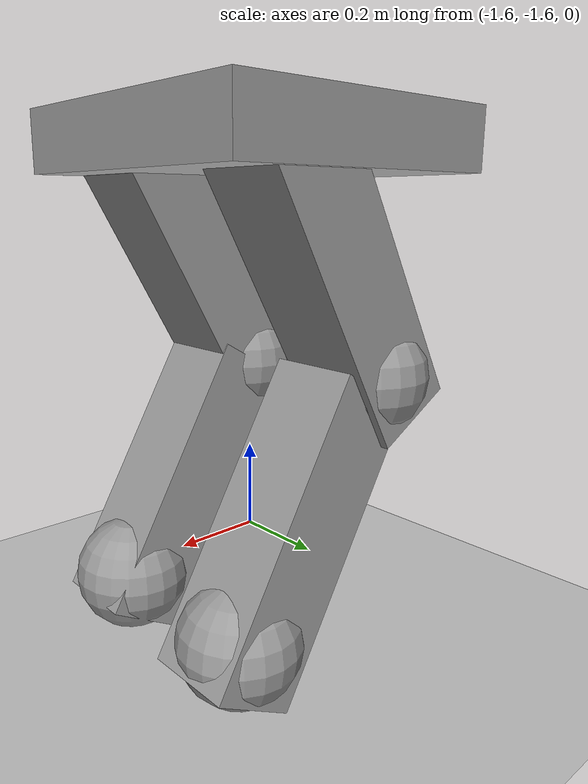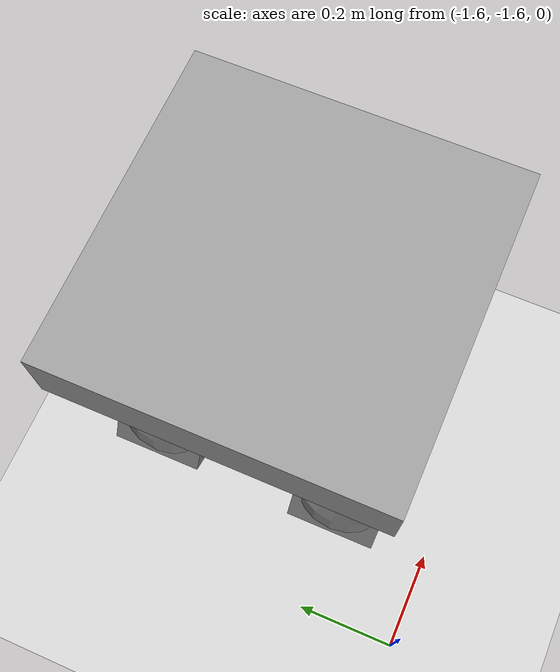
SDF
<sdf version="1.6">
 <world name="default">
  <model name="ground_plane">
   <static>1</static>
   <link name="link">
    <collision name="collision">
     <geometry><plane><normal>0 0 1</normal><size>100 100</size></plane></geometry>
     <surface>
      <contact><collide_bitmask>65535</collide_bitmask></contact>
      <friction><ode><mu>100</mu><mu2>50</mu2></ode></friction>
     </surface>
    </collision>
    <visual name="visual">
     <cast_shadows>0</cast_shadows>
     <geometry><plane><normal>0 0 1</normal><size>100 100</size></plane></geometry>
     <material>
      <script><uri>file://media/materials/scripts/gazebo.material</uri><name>Gazebo/Grey</name></script>
     </material>
    </visual>
   </link>
  </model>
  <model name="2LeggedBot_clone">
   <link name="link_0">
    <inertial>
     <mass>1</mass>
     <inertia><ixx>0.1</ixx><ixy>0</ixy><ixz>0</ixz><iyy>0.1</iyy><iyz>0</iyz><izz>0.1</izz></inertia>
    </inertial>
    <pose>0.169699 -0.170527 -0.315363 0 -0 0</pose>
    <visual name="visual">
     <geometry><sphere><radius>0.1</radius></sphere></geometry>
     <material>
      <lighting>1</lighting>
      <script><uri>file://media/materials/scripts/gazebo.material</uri><name>Gazebo/Grey</name></script>
      <shader type="pixel"><normal_map>__default__</normal_map></shader>
      <ambient>0.3 0.3 0.3 1</ambient>
      <diffuse>0.7 0.7 0.7 1</diffuse>
      <specular>0.01 0.01 0.01 1</specular>
      <emissive>0 0 0 1</emissive>
     </material>
    </visual>
    <visual name="ModelPreview_2::link_0::visual_1">
     <geometry><sphere><radius>0.1</radius></sphere></geometry>
     <material>
      <lighting>1</lighting>
      <script><uri>file://media/materials/scripts/gazebo.material</uri><name>Gazebo/Grey</name></script>
      <shader type="pixel"><normal_map>__default__</normal_map></shader>
      <ambient>0.3 0.3 0.3 1</ambient>
      <diffuse>0.7 0.7 0.7 1</diffuse>
      <specular>0.01 0.01 0.01 1</specular>
      <emissive>0 0 0 1</emissive>
     </material>
    </visual>
    <collision name="collision">
     <geometry><sphere><radius>0.1</radius></sphere></geometry>
     <surface>
      <friction>
       <ode><mu>1</mu><mu2>1</mu2><fdir1>0 0 0</fdir1><slip1>0</slip1><slip2>0</slip2></ode>
       <torsional>
        <coefficient>1</coefficient>
        <patch_radius>0</patch_radius>
        <surface_radius>0</surface_radius>
        <use_patch_radius>1</use_patch_radius>
        <ode><slip>0</slip></ode>
       </torsional>
      </friction>
      <bounce><restitution_coefficient>0</restitution_coefficient><threshold>1e+06</threshold></bounce>
      <contact>
       <collide_without_contact>0</collide_without_contact>
       <collide_without_contact_bitmask>1</collide_without_contact_bitmask>
       <collide_bitmask>1</collide_bitmask>
       <ode>
        <soft_cfm>0</soft_cfm>
        <soft_erp>0.2</soft_erp>
        <kp>1e+13</kp>
        <kd>1</kd>
        <max_vel>0.01</max_vel>
        <min_depth>0</min_depth>
       </ode>
       <bullet>
        <split_impulse>1</split_impulse>
        <split_impulse_penetration_threshold>-0.01</split_impulse_penetration_threshold>
        <soft_cfm>0</soft_cfm>
        <soft_erp>0.2</soft_erp>
        <kp>1e+13</kp>
        <kd>1</kd>
       </bullet>
      </contact>
     </surface>
    </collision>
   </link>
   <link name="link_0_clone">
    <inertial>
     <mass>1</mass>
     <inertia><ixx>0.1</ixx><ixy>0</ixy><ixz>0</ixz><iyy>0.1</iyy><iyz>0</iyz><izz>0.1</izz></inertia>
    </inertial>
    <pose>0.169699 0.129473 -0.315363 0 -0 0</pose>
    <visual name="visual">
     <geometry><sphere><radius>0.1</radius></sphere></geometry>
     <material>
      <lighting>1</lighting>
      <script><uri>file://media/materials/scripts/gazebo.material</uri><name>Gazebo/Grey</name></script>
      <shader type="pixel"><normal_map>__default__</normal_map></shader>
      <ambient>0.3 0.3 0.3 1</ambient>
      <diffuse>0.7 0.7 0.7 1</diffuse>
      <specular>0.01 0.01 0.01 1</specular>
      <emissive>0 0 0 1</emissive>
     </material>
    </visual>
    <visual name="visual_1">
     <geometry><sphere><radius>0.1</radius></sphere></geometry>
     <material>
      <lighting>1</lighting>
      <script><uri>file://media/materials/scripts/gazebo.material</uri><name>Gazebo/Grey</name></script>
      <shader type="pixel"><normal_map>__default__</normal_map></shader>
      <ambient>0.3 0.3 0.3 1</ambient>
      <diffuse>0.7 0.7 0.7 1</diffuse>
      <specular>0.01 0.01 0.01 1</specular>
      <emissive>0 0 0 1</emissive>
     </material>
    </visual>
    <collision name="collision">
     <geometry><sphere><radius>0.1</radius></sphere></geometry>
     <surface>
      <friction>
       <ode><mu>1</mu><mu2>1</mu2><fdir1>0 0 0</fdir1><slip1>0</slip1><slip2>0</slip2></ode>
       <torsional>
        <coefficient>1</coefficient>
        <patch_radius>0</patch_radius>
        <surface_radius>0</surface_radius>
        <use_patch_radius>1</use_patch_radius>
        <ode><slip>0</slip></ode>
       </torsional>
      </friction>
      <bounce><restitution_coefficient>0</restitution_coefficient><threshold>1e+06</threshold></bounce>
      <contact>
       <collide_without_contact>0</collide_without_contact>
       <collide_without_contact_bitmask>1</collide_without_contact_bitmask>
       <collide_bitmask>1</collide_bitmask>
       <ode>
        <soft_cfm>0</soft_cfm>
        <soft_erp>0.2</soft_erp>
        <kp>1e+13</kp>
        <kd>1</kd>
        <max_vel>0.01</max_vel>
        <min_depth>0</min_depth>
       </ode>
       <bullet>
        <split_impulse>1</split_impulse>
        <split_impulse_penetration_threshold>-0.01</split_impulse_penetration_threshold>
        <soft_cfm>0</soft_cfm>
        <soft_erp>0.2</soft_erp>
        <kp>1e+13</kp>
        <kd>1</kd>
       </bullet>
      </contact>
     </surface>
    </collision>
   </link>
   <link name="link_0_clone_0">
    <inertial>
     <mass>1</mass>
     <inertia><ixx>0.1</ixx><ixy>0</ixy><ixz>0</ixz><iyy>0.1</iyy><iyz>0</iyz><izz>0.1</izz></inertia>
    </inertial>
    <pose>-0.088021 0.142639 0.064349 0 -0 0</pose>
    <visual name="visual_1">
     <geometry><sphere><radius>0.1</radius></sphere></geometry>
     <material>
      <lighting>1</lighting>
      <script><uri>file://media/materials/scripts/gazebo.material</uri><name>Gazebo/Grey</name></script>
      <shader type="pixel"><normal_map>__default__</normal_map></shader>
      <ambient>0.3 0.3 0.3 1</ambient>
      <diffuse>0.7 0.7 0.7 1</diffuse>
      <specular>0.01 0.01 0.01 1</specular>
      <emissive>0 0 0 1</emissive>
     </material>
    </visual>
    <visual name="visual">
     <geometry><sphere><radius>0.1</radius></sphere></geometry>
     <material>
      <lighting>1</lighting>
      <script><uri>file://media/materials/scripts/gazebo.material</uri><name>Gazebo/Grey</name></script>
      <shader type="pixel"><normal_map>__default__</normal_map></shader>
      <ambient>0.3 0.3 0.3 1</ambient>
      <diffuse>0.7 0.7 0.7 1</diffuse>
      <specular>0.01 0.01 0.01 1</specular>
      <emissive>0 0 0 1</emissive>
     </material>
    </visual>
    <collision name="collision">
     <geometry><sphere><radius>0.1</radius></sphere></geometry>
     <surface>
      <friction>
       <ode><mu>1</mu><mu2>1</mu2><fdir1>0 0 0</fdir1><slip1>0</slip1><slip2>0</slip2></ode>
       <torsional>
        <coefficient>1</coefficient>
        <patch_radius>0</patch_radius>
        <surface_radius>0</surface_radius>
        <use_patch_radius>1</use_patch_radius>
        <ode><slip>0</slip></ode>
       </torsional>
      </friction>
      <bounce><restitution_coefficient>0</restitution_coefficient><threshold>1e+06</threshold></bounce>
      <contact>
       <collide_without_contact>0</collide_without_contact>
       <collide_without_contact_bitmask>1</collide_without_contact_bitmask>
       <collide_bitmask>1</collide_bitmask>
       <ode>
        <soft_cfm>0</soft_cfm>
        <soft_erp>0.2</soft_erp>
        <kp>1e+13</kp>
        <kd>1</kd>
        <max_vel>0.01</max_vel>
        <min_depth>0</min_depth>
       </ode>
       <bullet>
        <split_impulse>1</split_impulse>
        <split_impulse_penetration_threshold>-0.01</split_impulse_penetration_threshold>
        <soft_cfm>0</soft_cfm>
        <soft_erp>0.2</soft_erp>
        <kp>1e+13</kp>
        <kd>1</kd>
       </bullet>
      </contact>
     </surface>
    </collision>
   </link>
   <link name="link_0_clone_1">
    <inertial>
     <mass>1</mass>
     <inertia><ixx>0.1</ixx><ixy>0</ixy><ixz>0</ixz><iyy>0.1</iyy><iyz>0</iyz><izz>0.1</izz></inertia>
    </inertial>
    <pose>-0.092915 -0.172952 0.04398 0 -0 0</pose>
    <visual name="visual">
     <geometry><sphere><radius>0.1</radius></sphere></geometry>
     <material>
      <lighting>1</lighting>
      <script><uri>file://media/materials/scripts/gazebo.material</uri><name>Gazebo/Grey</name></script>
      <shader type="pixel"><normal_map>__default__</normal_map></shader>
      <ambient>0.3 0.3 0.3 1</ambient>
      <diffuse>0.7 0.7 0.7 1</diffuse>
      <specular>0.01 0.01 0.01 1</specular>
      <emissive>0 0 0 1</emissive>
     </material>
    </visual>
    <visual name="visual_1">
     <geometry><sphere><radius>0.1</radius></sphere></geometry>
     <material>
      <lighting>1</lighting>
      <script><uri>file://media/materials/scripts/gazebo.material</uri><name>Gazebo/Grey</name></script>
      <shader type="pixel"><normal_map>__default__</normal_map></shader>
      <ambient>0.3 0.3 0.3 1</ambient>
      <diffuse>0.7 0.7 0.7 1</diffuse>
      <specular>0.01 0.01 0.01 1</specular>
      <emissive>0 0 0 1</emissive>
     </material>
    </visual>
    <collision name="collision">
     <geometry><sphere><radius>0.1</radius></sphere></geometry>
     <surface>
      <friction>
       <ode><mu>1</mu><mu2>1</mu2><fdir1>0 0 0</fdir1><slip1>0</slip1><slip2>0</slip2></ode>
       <torsional>
        <coefficient>1</coefficient>
        <patch_radius>0</patch_radius>
        <surface_radius>0</surface_radius>
        <use_patch_radius>1</use_patch_radius>
        <ode><slip>0</slip></ode>
       </torsional>
      </friction>
      <bounce><restitution_coefficient>0</restitution_coefficient><threshold>1e+06</threshold></bounce>
      <contact>
       <collide_without_contact>0</collide_without_contact>
       <collide_without_contact_bitmask>1</collide_without_contact_bitmask>
       <collide_bitmask>1</collide_bitmask>
       <ode>
        <soft_cfm>0</soft_cfm>
        <soft_erp>0.2</soft_erp>
        <kp>1e+13</kp>
        <kd>1</kd>
        <max_vel>0.01</max_vel>
        <min_depth>0</min_depth>
       </ode>
       <bullet>
        <split_impulse>1</split_impulse>
        <split_impulse_penetration_threshold>-0.01</split_impulse_penetration_threshold>
        <soft_cfm>0</soft_cfm>
        <soft_erp>0.2</soft_erp>
        <kp>1e+13</kp>
        <kd>1</kd>
       </bullet>
      </contact>
     </surface>
    </collision>
   </link>
   <link name="link_2">
    <inertial>
     <mass>1</mass>
     <inertia>
      <ixx>0.166667</ixx>
      <ixy>0</ixy>
      <ixz>0</ixz>
      <iyy>0.166667</iyy>
      <iyz>0</iyz>
      <izz>0.166667</izz>
     </inertia>
    </inertial>
    <pose>0.063484 -0.170527 -0.161345 0 -0.5234 0</pose>
    <visual name="visual">
     <geometry><box><size>0.15 0.15 0.5</size></box></geometry>
     <material>
      <lighting>1</lighting>
      <script><uri>file://media/materials/scripts/gazebo.material</uri><name>Gazebo/Grey</name></script>
      <shader type="pixel"><normal_map>__default__</normal_map></shader>
      <ambient>0.3 0.3 0.3 1</ambient>
      <diffuse>0.7 0.7 0.7 1</diffuse>
      <specular>0.01 0.01 0.01 1</specular>
      <emissive>0 0 0 1</emissive>
     </material>
    </visual>
    <collision name="collision">
     <geometry><box><size>0.15 0.15 0.5</size></box></geometry>
     <surface>
      <friction>
       <ode><mu>1</mu><mu2>1</mu2><fdir1>0 0 0</fdir1><slip1>0</slip1><slip2>0</slip2></ode>
       <torsional>
        <coefficient>1</coefficient>
        <patch_radius>0</patch_radius>
        <surface_radius>0</surface_radius>
        <use_patch_radius>1</use_patch_radius>
        <ode><slip>0</slip></ode>
       </torsional>
      </friction>
      <bounce><restitution_coefficient>0</restitution_coefficient><threshold>1e+06</threshold></bounce>
      <contact>
       <collide_without_contact>0</collide_without_contact>
       <collide_without_contact_bitmask>1</collide_without_contact_bitmask>
       <collide_bitmask>1</collide_bitmask>
       <ode>
        <soft_cfm>0</soft_cfm>
        <soft_erp>0.2</soft_erp>
        <kp>1e+13</kp>
        <kd>1</kd>
        <max_vel>0.01</max_vel>
        <min_depth>0</min_depth>
       </ode>
       <bullet>
        <split_impulse>1</split_impulse>
        <split_impulse_penetration_threshold>-0.01</split_impulse_penetration_threshold>
        <soft_cfm>0</soft_cfm>
        <soft_erp>0.2</soft_erp>
        <kp>1e+13</kp>
        <kd>1</kd>
       </bullet>
      </contact>
     </surface>
    </collision>
   </link>
   <link name="link_2_clone">
    <inertial>
     <mass>1</mass>
     <inertia>
      <ixx>0.166667</ixx>
      <ixy>0</ixy>
      <ixz>0</ixz>
      <iyy>0.166667</iyy>
      <iyz>0</iyz>
      <izz>0.166667</izz>
     </inertia>
    </inertial>
    <pose>0.001286 0.142639 0.21857 0 0.52 0</pose>
    <visual name="visual">
     <geometry><box><size>0.15 0.15 0.5</size></box></geometry>
     <material>
      <lighting>1</lighting>
      <script><uri>file://media/materials/scripts/gazebo.material</uri><name>Gazebo/Grey</name></script>
      <shader type="pixel"><normal_map>__default__</normal_map></shader>
      <ambient>0.3 0.3 0.3 1</ambient>
      <diffuse>0.7 0.7 0.7 1</diffuse>
      <specular>0.01 0.01 0.01 1</specular>
      <emissive>0 0 0 1</emissive>
     </material>
    </visual>
    <collision name="collision">
     <geometry><box><size>0.15 0.15 0.5</size></box></geometry>
     <surface>
      <friction>
       <ode><mu>1</mu><mu2>1</mu2><fdir1>0 0 0</fdir1><slip1>0</slip1><slip2>0</slip2></ode>
       <torsional>
        <coefficient>1</coefficient>
        <patch_radius>0</patch_radius>
        <surface_radius>0</surface_radius>
        <use_patch_radius>1</use_patch_radius>
        <ode><slip>0</slip></ode>
       </torsional>
      </friction>
      <bounce><restitution_coefficient>0</restitution_coefficient><threshold>1e+06</threshold></bounce>
      <contact>
       <collide_without_contact>0</collide_without_contact>
       <collide_without_contact_bitmask>1</collide_without_contact_bitmask>
       <collide_bitmask>1</collide_bitmask>
       <ode>
        <soft_cfm>0</soft_cfm>
        <soft_erp>0.2</soft_erp>
        <kp>1e+13</kp>
        <kd>1</kd>
        <max_vel>0.01</max_vel>
        <min_depth>0</min_depth>
       </ode>
       <bullet>
        <split_impulse>1</split_impulse>
        <split_impulse_penetration_threshold>-0.01</split_impulse_penetration_threshold>
        <soft_cfm>0</soft_cfm>
        <soft_erp>0.2</soft_erp>
        <kp>1e+13</kp>
        <kd>1</kd>
       </bullet>
      </contact>
     </surface>
    </collision>
   </link>
   <link name="link_2_clone_0">
    <inertial>
     <mass>1</mass>
     <inertia>
      <ixx>0.166667</ixx>
      <ixy>0</ixy>
      <ixz>0</ixz>
      <iyy>0.166667</iyy>
      <iyz>0</iyz>
      <izz>0.166667</izz>
     </inertia>
    </inertial>
    <pose>0.079782 0.129473 -0.161345 0 -0.5234 0</pose>
    <visual name="visual">
     <geometry><box><size>0.15 0.15 0.5</size></box></geometry>
     <material>
      <lighting>1</lighting>
      <script><uri>file://media/materials/scripts/gazebo.material</uri><name>Gazebo/Grey</name></script>
      <shader type="pixel"><normal_map>__default__</normal_map></shader>
      <ambient>0.3 0.3 0.3 1</ambient>
      <diffuse>0.7 0.7 0.7 1</diffuse>
      <specular>0.01 0.01 0.01 1</specular>
      <emissive>0 0 0 1</emissive>
     </material>
    </visual>
    <collision name="collision">
     <geometry><box><size>0.15 0.15 0.5</size></box></geometry>
     <surface>
      <friction>
       <ode><mu>1</mu><mu2>1</mu2><fdir1>0 0 0</fdir1><slip1>0</slip1><slip2>0</slip2></ode>
       <torsional>
        <coefficient>1</coefficient>
        <patch_radius>0</patch_radius>
        <surface_radius>0</surface_radius>
        <use_patch_radius>1</use_patch_radius>
        <ode><slip>0</slip></ode>
       </torsional>
      </friction>
      <bounce><restitution_coefficient>0</restitution_coefficient><threshold>1e+06</threshold></bounce>
      <contact>
       <collide_without_contact>0</collide_without_contact>
       <collide_without_contact_bitmask>1</collide_without_contact_bitmask>
       <collide_bitmask>1</collide_bitmask>
       <ode>
        <soft_cfm>0</soft_cfm>
        <soft_erp>0.2</soft_erp>
        <kp>1e+13</kp>
        <kd>1</kd>
        <max_vel>0.01</max_vel>
        <min_depth>0</min_depth>
       </ode>
       <bullet>
        <split_impulse>1</split_impulse>
        <split_impulse_penetration_threshold>-0.01</split_impulse_penetration_threshold>
        <soft_cfm>0</soft_cfm>
        <soft_erp>0.2</soft_erp>
        <kp>1e+13</kp>
        <kd>1</kd>
       </bullet>
      </contact>
     </surface>
    </collision>
   </link>
   <link name="link_2_clone_clone">
    <inertial>
     <mass>1</mass>
     <inertia>
      <ixx>0.166667</ixx>
      <ixy>0</ixy>
      <ixz>0</ixz>
      <iyy>0.166667</iyy>
      <iyz>0</iyz>
      <izz>0.166667</izz>
     </inertia>
    </inertial>
    <pose>-0.003609 -0.172952 0.1982 0 0.52 0</pose>
    <visual name="visual">
     <geometry><box><size>0.15 0.15 0.5</size></box></geometry>
     <material>
      <lighting>1</lighting>
      <script><uri>file://media/materials/scripts/gazebo.material</uri><name>Gazebo/Grey</name></script>
      <shader type="pixel"><normal_map>__default__</normal_map></shader>
      <ambient>0.3 0.3 0.3 1</ambient>
      <diffuse>0.7 0.7 0.7 1</diffuse>
      <specular>0.01 0.01 0.01 1</specular>
      <emissive>0 0 0 1</emissive>
     </material>
    </visual>
    <collision name="collision">
     <geometry><box><size>0.15 0.15 0.5</size></box></geometry>
     <surface>
      <friction>
       <ode><mu>1</mu><mu2>1</mu2><fdir1>0 0 0</fdir1><slip1>0</slip1><slip2>0</slip2></ode>
       <torsional>
        <coefficient>1</coefficient>
        <patch_radius>0</patch_radius>
        <surface_radius>0</surface_radius>
        <use_patch_radius>1</use_patch_radius>
        <ode><slip>0</slip></ode>
       </torsional>
      </friction>
      <bounce><restitution_coefficient>0</restitution_coefficient><threshold>1e+06</threshold></bounce>
      <contact>
       <collide_without_contact>0</collide_without_contact>
       <collide_without_contact_bitmask>1</collide_without_contact_bitmask>
       <collide_bitmask>1</collide_bitmask>
       <ode>
        <soft_cfm>0</soft_cfm>
        <soft_erp>0.2</soft_erp>
        <kp>1e+13</kp>
        <kd>1</kd>
        <max_vel>0.01</max_vel>
        <min_depth>0</min_depth>
       </ode>
       <bullet>
        <split_impulse>1</split_impulse>
        <split_impulse_penetration_threshold>-0.01</split_impulse_penetration_threshold>
        <soft_cfm>0</soft_cfm>
        <soft_erp>0.2</soft_erp>
        <kp>1e+13</kp>
        <kd>1</kd>
       </bullet>
      </contact>
     </surface>
    </collision>
   </link>
   <link name="link_3">
    <inertial>
     <mass>1</mass>
     <inertia>
      <ixx>0.166667</ixx>
      <ixy>0</ixy>
      <ixz>0</ixz>
      <iyy>0.166667</iyy>
      <iyz>0</iyz>
      <izz>0.166667</izz>
     </inertia>
    </inertial>
    <pose>0.014885 -0.015108 0.428317 0 -0 0</pose>
    <visual name="visual">
     <geometry><box><size>0.5 0.5 0.1</size></box></geometry>
     <material>
      <lighting>1</lighting>
      <script><uri>file://media/materials/scripts/gazebo.material</uri><name>Gazebo/Grey</name></script>
      <shader type="pixel"><normal_map>__default__</normal_map></shader>
      <ambient>0.3 0.3 0.3 1</ambient>
      <diffuse>0.7 0.7 0.7 1</diffuse>
      <specular>0.01 0.01 0.01 1</specular>
      <emissive>0 0 0 1</emissive>
     </material>
    </visual>
    <collision name="collision">
     <geometry><box><size>0.5 0.5 0.1</size></box></geometry>
     <surface>
      <friction>
       <ode><mu>1</mu><mu2>1</mu2><fdir1>0 0 0</fdir1><slip1>0</slip1><slip2>0</slip2></ode>
       <torsional>
        <coefficient>1</coefficient>
        <patch_radius>0</patch_radius>
        <surface_radius>0</surface_radius>
        <use_patch_radius>1</use_patch_radius>
        <ode><slip>0</slip></ode>
       </torsional>
      </friction>
      <bounce><restitution_coefficient>0</restitution_coefficient><threshold>1e+06</threshold></bounce>
      <contact>
       <collide_without_contact>0</collide_without_contact>
       <collide_without_contact_bitmask>1</collide_without_contact_bitmask>
       <collide_bitmask>1</collide_bitmask>
       <ode>
        <soft_cfm>0</soft_cfm>
        <soft_erp>0.2</soft_erp>
        <kp>1e+13</kp>
        <kd>1</kd>
        <max_vel>0.01</max_vel>
        <min_depth>0</min_depth>
       </ode>
       <bullet>
        <split_impulse>1</split_impulse>
        <split_impulse_penetration_threshold>-0.01</split_impulse_penetration_threshold>
        <soft_cfm>0</soft_cfm>
        <soft_erp>0.2</soft_erp>
        <kp>1e+13</kp>
        <kd>1</kd>
       </bullet>
      </contact>
     </surface>
    </collision>
   </link>
   <joint name="link_0_clone_0_JOINT_4" type="revolute">
    <parent>link_0_clone_0</parent>
    <child>link_2_clone</child>
    <axis>
     <xyz>1 0 0</xyz>
     <limit>
      <lower>-1.79769e+308</lower>
      <upper>1.79769e+308</upper>
      <effort>-1</effort>
      <velocity>-1</velocity>
     </limit>
     <dynamics>
      <spring_reference>0</spring_reference>
      <spring_stiffness>0</spring_stiffness>
      <damping>0</damping>
      <friction>0</friction>
     </dynamics>
     <use_parent_model_frame>0</use_parent_model_frame>
    </axis>
    <physics>
     <ode><limit><cfm>0</cfm><erp>0.2</erp></limit><suspension><cfm>0</cfm><erp>0.2</erp></suspension></ode>
    </physics>
   </joint>
   <joint name="link_0_clone_1_JOINT_5" type="revolute">
    <parent>link_0_clone_1</parent>
    <child>link_2_clone_clone</child>
    <axis>
     <xyz>1 0 0</xyz>
     <limit>
      <lower>-1.79769e+308</lower>
      <upper>1.79769e+308</upper>
      <effort>-1</effort>
      <velocity>-1</velocity>
     </limit>
     <dynamics>
      <spring_reference>0</spring_reference>
      <spring_stiffness>0</spring_stiffness>
      <damping>0</damping>
      <friction>0</friction>
     </dynamics>
     <use_parent_model_frame>0</use_parent_model_frame>
    </axis>
    <physics>
     <ode><limit><cfm>0</cfm><erp>0.2</erp></limit><suspension><cfm>0</cfm><erp>0.2</erp></suspension></ode>
    </physics>
   </joint>
   <joint name="link_0_clone_JOINT_1" type="fixed">
    <parent>link_0_clone</parent>
    <child>link_2_clone_0</child>
    <physics>
     <ode><limit><cfm>0</cfm><erp>0.2</erp></limit><suspension><cfm>0</cfm><erp>0.2</erp></suspension></ode>
    </physics>
   </joint>
   <joint name="link_2_JOINT_0" type="fixed">
    <parent>link_0</parent>
    <child>link_2</child>
    <physics>
     <ode><limit><cfm>0</cfm><erp>0.2</erp></limit><suspension><cfm>0</cfm><erp>0.2</erp></suspension></ode>
    </physics>
   </joint>
   <joint name="link_2_JOINT_2" type="revolute">
    <parent>link_2</parent>
    <child>link_0_clone_1</child>
    <axis>
     <xyz>1 0 0</xyz>
     <limit>
      <lower>-1.79769e+308</lower>
      <upper>1.79769e+308</upper>
      <effort>-1</effort>
      <velocity>-1</velocity>
     </limit>
     <dynamics>
      <spring_reference>0</spring_reference>
      <spring_stiffness>0</spring_stiffness>
      <damping>0</damping>
      <friction>0</friction>
     </dynamics>
     <use_parent_model_frame>0</use_parent_model_frame>
    </axis>
    <physics>
     <ode><limit><cfm>0</cfm><erp>0.2</erp></limit><suspension><cfm>0</cfm><erp>0.2</erp></suspension></ode>
    </physics>
   </joint>
   <joint name="link_2_clone_0_JOINT_3" type="fixed">
    <parent>link_2_clone_0</parent>
    <child>link_0_clone_0</child>
    <physics>
     <ode><limit><cfm>0</cfm><erp>0.2</erp></limit><suspension><cfm>0</cfm><erp>0.2</erp></suspension></ode>
    </physics>
   </joint>
   <joint name="link_2_clone_JOINT_8" type="fixed">
    <parent>link_2_clone</parent>
    <child>link_3</child>
    <physics>
     <ode><limit><cfm>0</cfm><erp>0.2</erp></limit><suspension><cfm>0</cfm><erp>0.2</erp></suspension></ode>
    </physics>
   </joint>
   <joint name="link_3_JOINT_7" type="fixed">
    <parent>link_3</parent>
    <child>link_2_clone_clone</child>
    <physics>
     <ode><limit><cfm>0</cfm><erp>0.2</erp></limit><suspension><cfm>0</cfm><erp>0.2</erp></suspension></ode>
    </physics>
   </joint>
   <static>1</static>
   <pose>-1.31853 -1.23579 0.422143 0 -0 0</pose>
  </model>
 </world>
</sdf>
